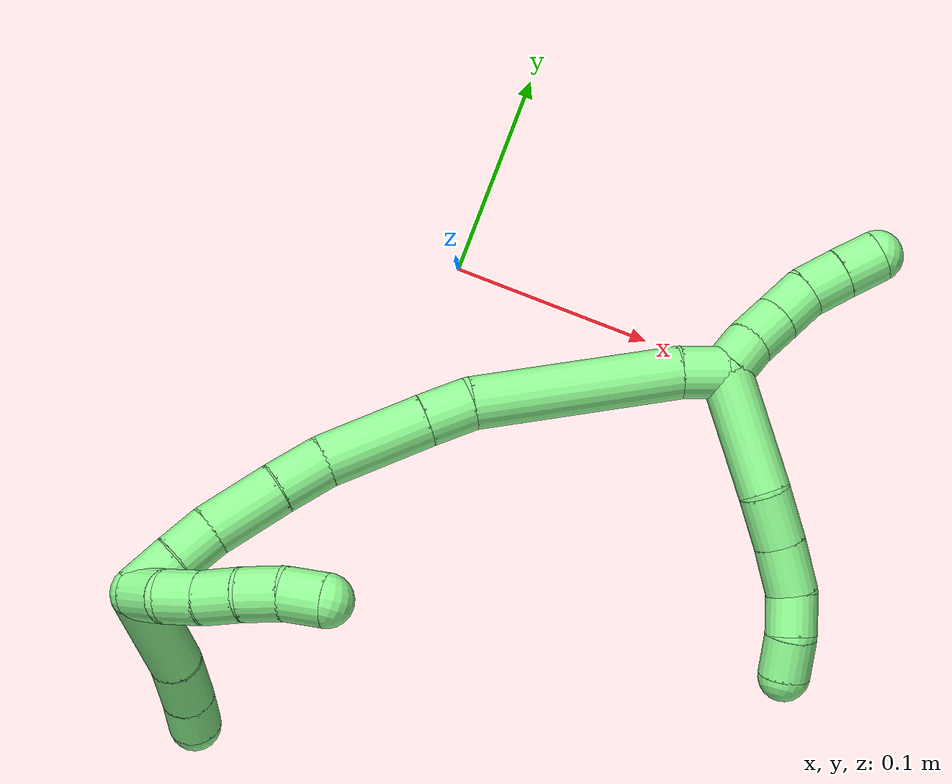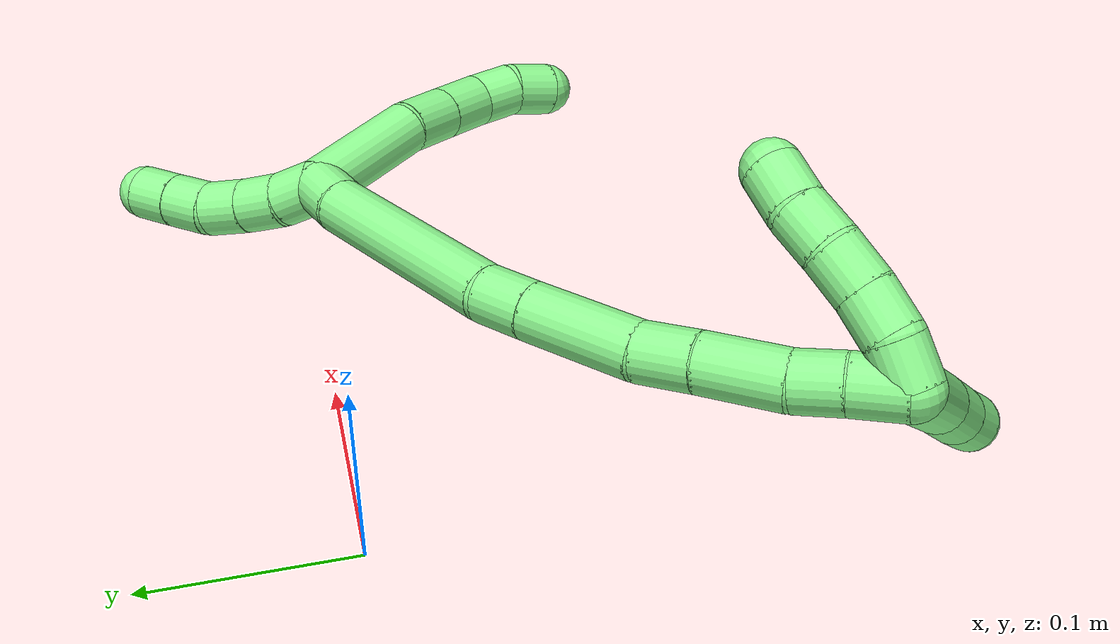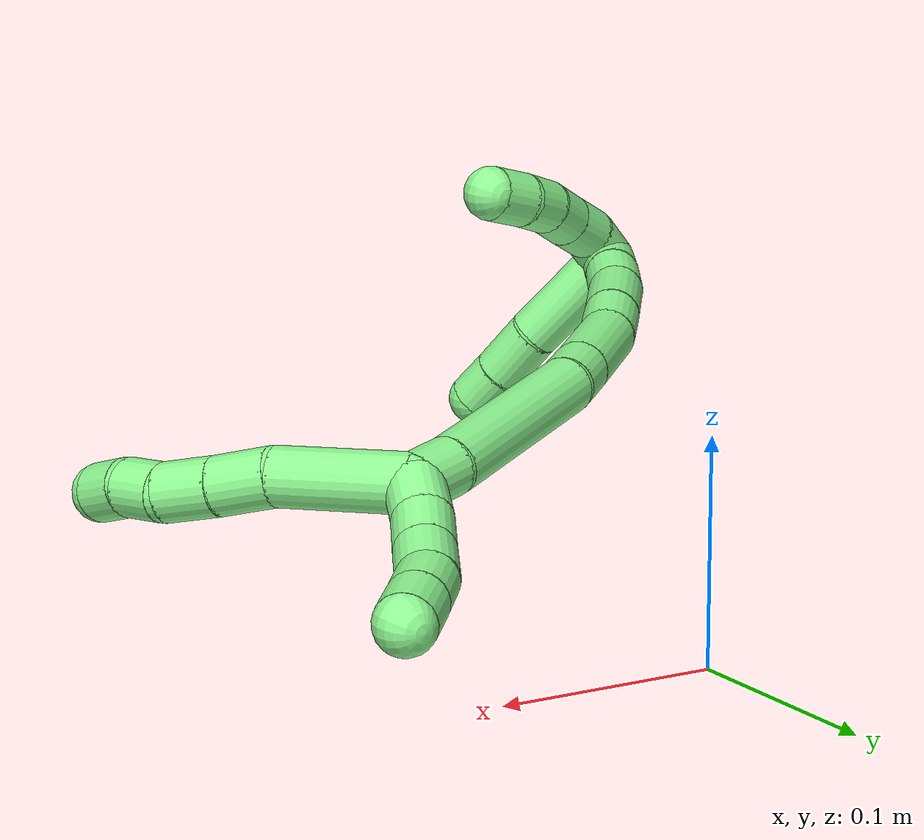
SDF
<sdf version="1.7">
 <world name="default">
  <model name="13">
   <static>0</static>
   <link name="13">
    <collision name="collision-cylinder-e_1_2_8">
     <pose>0.012705 0.010531 0.024418 -0.407168 0.445712 -0.093501</pose>
     <geometry><cylinder><radius>0.0125</radius><length>0.058943</length></cylinder></geometry>
     <surface>
      <friction><ode><mu>1.16</mu><mu2>1.16</mu2><slip1>0</slip1><slip2>0</slip2></ode></friction>
      <contact><ode><kp>1e+06</kp><kd>1</kd><max_vel>0</max_vel><min_depth>0.001</min_depth></ode></contact>
     </surface>
    </collision>
    <visual name="visual-cylinder-e_1_2_8">
     <pose>0.012705 0.010531 0.024418 -0.407168 0.445712 -0.093501</pose>
     <geometry><cylinder><radius>0.0125</radius><length>0.058943</length></cylinder></geometry>
     <material><ambient>0.564706 0.984314 0.572549 1</ambient></material>
    </visual>
    <collision name="collision-cylinder-e_2_8_9">
     <pose>0.03279 0.023792 0.059088 -0.260251 0.607766 -0.082031</pose>
     <geometry><cylinder><radius>0.0125</radius><length>0.025848</length></cylinder></geometry>
     <surface>
      <friction><ode><mu>1.16</mu><mu2>1.16</mu2><slip1>0</slip1><slip2>0</slip2></ode></friction>
      <contact><ode><kp>1e+06</kp><kd>1</kd><max_vel>0</max_vel><min_depth>0.001</min_depth></ode></contact>
     </surface>
    </collision>
    <visual name="visual-cylinder-e_2_8_9">
     <pose>0.03279 0.023792 0.059088 -0.260251 0.607766 -0.082031</pose>
     <geometry><cylinder><radius>0.0125</radius><length>0.025848</length></cylinder></geometry>
     <material><ambient>0.564706 0.984314 0.572549 1</ambient></material>
    </visual>
    <collision name="collision-cylinder-e_3_9_10">
     <pose>0.046697 0.029031 0.079672 -0.238265 0.550614 -0.0676</pose>
     <geometry><cylinder><radius>0.0125</radius><length>0.02495</length></cylinder></geometry>
     <surface>
      <friction><ode><mu>1.16</mu><mu2>1.16</mu2><slip1>0</slip1><slip2>0</slip2></ode></friction>
      <contact><ode><kp>1e+06</kp><kd>1</kd><max_vel>0</max_vel><min_depth>0.001</min_depth></ode></contact>
     </surface>
    </collision>
    <visual name="visual-cylinder-e_3_9_10">
     <pose>0.046697 0.029031 0.079672 -0.238265 0.550614 -0.0676</pose>
     <geometry><cylinder><radius>0.0125</radius><length>0.02495</length></cylinder></geometry>
     <material><ambient>0.564706 0.984314 0.572549 1</ambient></material>
    </visual>
    <collision name="collision-cylinder-e_4_10_11">
     <pose>0.05577 0.032674 0.099672 -0.11672 0.25573 -0.015023</pose>
     <geometry><cylinder><radius>0.0125</radius><length>0.020126</length></cylinder></geometry>
     <surface>
      <friction><ode><mu>1.16</mu><mu2>1.16</mu2><slip1>0</slip1><slip2>0</slip2></ode></friction>
      <contact><ode><kp>1e+06</kp><kd>1</kd><max_vel>0</max_vel><min_depth>0.001</min_depth></ode></contact>
     </surface>
    </collision>
    <visual name="visual-cylinder-e_4_10_11">
     <pose>0.05577 0.032674 0.099672 -0.11672 0.25573 -0.015023</pose>
     <geometry><cylinder><radius>0.0125</radius><length>0.020126</length></cylinder></geometry>
     <material><ambient>0.564706 0.984314 0.572549 1</ambient></material>
    </visual>
    <collision name="collision-cylinder-e_5_11_6">
     <pose>0.061804 0.032338 0.118669 0.15622 0.353877 0.027988</pose>
     <geometry><cylinder><radius>0.0125</radius><length>0.020134</length></cylinder></geometry>
     <surface>
      <friction><ode><mu>1.16</mu><mu2>1.16</mu2><slip1>0</slip1><slip2>0</slip2></ode></friction>
      <contact><ode><kp>1e+06</kp><kd>1</kd><max_vel>0</max_vel><min_depth>0.001</min_depth></ode></contact>
     </surface>
    </collision>
    <visual name="visual-cylinder-e_5_11_6">
     <pose>0.061804 0.032338 0.118669 0.15622 0.353877 0.027988</pose>
     <geometry><cylinder><radius>0.0125</radius><length>0.020134</length></cylinder></geometry>
     <material><ambient>0.564706 0.984314 0.572549 1</ambient></material>
    </visual>
    <collision name="collision-cylinder-e_1_2_12">
     <pose>0.005614 7.8e-05 -0.008275 -3.13219 0.596073 -3.11099</pose>
     <geometry><cylinder><radius>0.0125</radius><length>0.02</length></cylinder></geometry>
     <surface>
      <friction><ode><mu>1.16</mu><mu2>1.16</mu2><slip1>0</slip1><slip2>0</slip2></ode></friction>
      <contact><ode><kp>1e+06</kp><kd>1</kd><max_vel>0</max_vel><min_depth>0.001</min_depth></ode></contact>
     </surface>
    </collision>
    <visual name="visual-cylinder-e_1_2_12">
     <pose>0.005614 7.8e-05 -0.008275 -3.13219 0.596073 -3.11099</pose>
     <geometry><cylinder><radius>0.0125</radius><length>0.02</length></cylinder></geometry>
     <material><ambient>0.564706 0.984314 0.572549 1</ambient></material>
    </visual>
    <collision name="collision-cylinder-e_2_12_13">
     <pose>0.016853 0.002009 -0.024608 -2.91556 0.597395 -2.43528</pose>
     <geometry><cylinder><radius>0.0125</radius><length>0.02</length></cylinder></geometry>
     <surface>
      <friction><ode><mu>1.16</mu><mu2>1.16</mu2><slip1>0</slip1><slip2>0</slip2></ode></friction>
      <contact><ode><kp>1e+06</kp><kd>1</kd><max_vel>0</max_vel><min_depth>0.001</min_depth></ode></contact>
     </surface>
    </collision>
    <visual name="visual-cylinder-e_2_12_13">
     <pose>0.016853 0.002009 -0.024608 -2.91556 0.597395 -2.43528</pose>
     <geometry><cylinder><radius>0.0125</radius><length>0.02</length></cylinder></geometry>
     <material><ambient>0.564706 0.984314 0.572549 1</ambient></material>
    </visual>
    <collision name="collision-cylinder-e_3_13_14">
     <pose>0.027503 0.006355 -0.040944 -2.84902 0.526534 -2.14102</pose>
     <geometry><cylinder><radius>0.0125</radius><length>0.02</length></cylinder></geometry>
     <surface>
      <friction><ode><mu>1.16</mu><mu2>1.16</mu2><slip1>0</slip1><slip2>0</slip2></ode></friction>
      <contact><ode><kp>1e+06</kp><kd>1</kd><max_vel>0</max_vel><min_depth>0.001</min_depth></ode></contact>
     </surface>
    </collision>
    <visual name="visual-cylinder-e_3_13_14">
     <pose>0.027503 0.006355 -0.040944 -2.84902 0.526534 -2.14102</pose>
     <geometry><cylinder><radius>0.0125</radius><length>0.02</length></cylinder></geometry>
     <material><ambient>0.564706 0.984314 0.572549 1</ambient></material>
    </visual>
    <collision name="collision-cylinder-e_4_14_15">
     <pose>0.037788 0.013851 -0.0561 -2.51284 0.55386 -1.43669</pose>
     <geometry><cylinder><radius>0.0125</radius><length>0.02</length></cylinder></geometry>
     <surface>
      <friction><ode><mu>1.16</mu><mu2>1.16</mu2><slip1>0</slip1><slip2>0</slip2></ode></friction>
      <contact><ode><kp>1e+06</kp><kd>1</kd><max_vel>0</max_vel><min_depth>0.001</min_depth></ode></contact>
     </surface>
    </collision>
    <visual name="visual-cylinder-e_4_14_15">
     <pose>0.037788 0.013851 -0.0561 -2.51284 0.55386 -1.43669</pose>
     <geometry><cylinder><radius>0.0125</radius><length>0.02</length></cylinder></geometry>
     <material><ambient>0.564706 0.984314 0.572549 1</ambient></material>
    </visual>
    <collision name="collision-cylinder-e_5_15_5">
     <pose>0.048492 0.023908 -0.069673 -2.49472 0.575689 -1.44694</pose>
     <geometry><cylinder><radius>0.0125</radius><length>0.02</length></cylinder></geometry>
     <surface>
      <friction><ode><mu>1.16</mu><mu2>1.16</mu2><slip1>0</slip1><slip2>0</slip2></ode></friction>
      <contact><ode><kp>1e+06</kp><kd>1</kd><max_vel>0</max_vel><min_depth>0.001</min_depth></ode></contact>
     </surface>
    </collision>
    <visual name="visual-cylinder-e_5_15_5">
     <pose>0.048492 0.023908 -0.069673 -2.49472 0.575689 -1.44694</pose>
     <geometry><cylinder><radius>0.0125</radius><length>0.02</length></cylinder></geometry>
     <material><ambient>0.564706 0.984314 0.572549 1</ambient></material>
    </visual>
    <collision name="collision-cylinder-e_1_2_16">
     <pose>-0.007597 -0.0073 0.003038 1.17649 -0.765404 -0.52464</pose>
     <geometry><cylinder><radius>0.0125</radius><length>0.02193</length></cylinder></geometry>
     <surface>
      <friction><ode><mu>1.16</mu><mu2>1.16</mu2><slip1>0</slip1><slip2>0</slip2></ode></friction>
      <contact><ode><kp>1e+06</kp><kd>1</kd><max_vel>0</max_vel><min_depth>0.001</min_depth></ode></contact>
     </surface>
    </collision>
    <visual name="visual-cylinder-e_1_2_16">
     <pose>-0.007597 -0.0073 0.003038 1.17649 -0.765404 -0.52464</pose>
     <geometry><cylinder><radius>0.0125</radius><length>0.02193</length></cylinder></geometry>
     <material><ambient>0.564706 0.984314 0.572549 1</ambient></material>
    </visual>
    <collision name="collision-cylinder-e_2_16_17">
     <pose>-0.04827 -0.045569 0.026667 0.984006 -0.726923 -0.402207</pose>
     <geometry><cylinder><radius>0.0125</radius><length>0.09954</length></cylinder></geometry>
     <surface>
      <friction><ode><mu>1.16</mu><mu2>1.16</mu2><slip1>0</slip1><slip2>0</slip2></ode></friction>
      <contact><ode><kp>1e+06</kp><kd>1</kd><max_vel>0</max_vel><min_depth>0.001</min_depth></ode></contact>
     </surface>
    </collision>
    <visual name="visual-cylinder-e_2_16_17">
     <pose>-0.04827 -0.045569 0.026667 0.984006 -0.726923 -0.402207</pose>
     <geometry><cylinder><radius>0.0125</radius><length>0.09954</length></cylinder></geometry>
     <material><ambient>0.564706 0.984314 0.572549 1</ambient></material>
    </visual>
    <collision name="collision-cylinder-e_3_17_18">
     <pose>-0.087711 -0.083062 0.053973 0.771007 -0.597106 -0.24849</pose>
     <geometry><cylinder><radius>0.0125</radius><length>0.022643</length></cylinder></geometry>
     <surface>
      <friction><ode><mu>1.16</mu><mu2>1.16</mu2><slip1>0</slip1><slip2>0</slip2></ode></friction>
      <contact><ode><kp>1e+06</kp><kd>1</kd><max_vel>0</max_vel><min_depth>0.001</min_depth></ode></contact>
     </surface>
    </collision>
    <visual name="visual-cylinder-e_3_17_18">
     <pose>-0.087711 -0.083062 0.053973 0.771007 -0.597106 -0.24849</pose>
     <geometry><cylinder><radius>0.0125</radius><length>0.022643</length></cylinder></geometry>
     <material><ambient>0.564706 0.984314 0.572549 1</ambient></material>
    </visual>
    <collision name="collision-cylinder-e_4_18_19">
     <pose>-0.107914 -0.10403 0.07623 0.748787 -0.577869 -0.232543</pose>
     <geometry><cylinder><radius>0.0125</radius><length>0.050661</length></cylinder></geometry>
     <surface>
      <friction><ode><mu>1.16</mu><mu2>1.16</mu2><slip1>0</slip1><slip2>0</slip2></ode></friction>
      <contact><ode><kp>1e+06</kp><kd>1</kd><max_vel>0</max_vel><min_depth>0.001</min_depth></ode></contact>
     </surface>
    </collision>
    <visual name="visual-cylinder-e_4_18_19">
     <pose>-0.107914 -0.10403 0.07623 0.748787 -0.577869 -0.232543</pose>
     <geometry><cylinder><radius>0.0125</radius><length>0.050661</length></cylinder></geometry>
     <material><ambient>0.564706 0.984314 0.572549 1</ambient></material>
    </visual>
    <collision name="collision-cylinder-e_5_19_20">
     <pose>-0.128501 -0.123896 0.100732 0.544214 -0.572581 -0.163911</pose>
     <geometry><cylinder><radius>0.0125</radius><length>0.024919</length></cylinder></geometry>
     <surface>
      <friction><ode><mu>1.16</mu><mu2>1.16</mu2><slip1>0</slip1><slip2>0</slip2></ode></friction>
      <contact><ode><kp>1e+06</kp><kd>1</kd><max_vel>0</max_vel><min_depth>0.001</min_depth></ode></contact>
     </surface>
    </collision>
    <visual name="visual-cylinder-e_5_19_20">
     <pose>-0.128501 -0.123896 0.100732 0.544214 -0.572581 -0.163911</pose>
     <geometry><cylinder><radius>0.0125</radius><length>0.024919</length></cylinder></geometry>
     <material><ambient>0.564706 0.984314 0.572549 1</ambient></material>
    </visual>
    <collision name="collision-cylinder-e_6_20_21">
     <pose>-0.143962 -0.137752 0.123187 0.558543 -0.500789 -0.146426</pose>
     <geometry><cylinder><radius>0.0125</radius><length>0.036285</length></cylinder></geometry>
     <surface>
      <friction><ode><mu>1.16</mu><mu2>1.16</mu2><slip1>0</slip1><slip2>0</slip2></ode></friction>
      <contact><ode><kp>1e+06</kp><kd>1</kd><max_vel>0</max_vel><min_depth>0.001</min_depth></ode></contact>
     </surface>
    </collision>
    <visual name="visual-cylinder-e_6_20_21">
     <pose>-0.143962 -0.137752 0.123187 0.558543 -0.500789 -0.146426</pose>
     <geometry><cylinder><radius>0.0125</radius><length>0.036285</length></cylinder></geometry>
     <material><ambient>0.564706 0.984314 0.572549 1</ambient></material>
    </visual>
    <collision name="collision-cylinder-e_7_21_22">
     <pose>-0.157547 -0.14966 0.145231 0.386013 -0.486011 -0.096825</pose>
     <geometry><cylinder><radius>0.0125</radius><length>0.02087</length></cylinder></geometry>
     <surface>
      <friction><ode><mu>1.16</mu><mu2>1.16</mu2><slip1>0</slip1><slip2>0</slip2></ode></friction>
      <contact><ode><kp>1e+06</kp><kd>1</kd><max_vel>0</max_vel><min_depth>0.001</min_depth></ode></contact>
     </surface>
    </collision>
    <visual name="visual-cylinder-e_7_21_22">
     <pose>-0.157547 -0.14966 0.145231 0.386013 -0.486011 -0.096825</pose>
     <geometry><cylinder><radius>0.0125</radius><length>0.02087</length></cylinder></geometry>
     <material><ambient>0.564706 0.984314 0.572549 1</ambient></material>
    </visual>
    <collision name="collision-cylinder-e_8_22_1">
     <pose>-0.167079 -0.157463 0.163451 0.420832 -0.414158 -0.089681</pose>
     <geometry><cylinder><radius>0.0125</radius><length>0.023151</length></cylinder></geometry>
     <surface>
      <friction><ode><mu>1.16</mu><mu2>1.16</mu2><slip1>0</slip1><slip2>0</slip2></ode></friction>
      <contact><ode><kp>1e+06</kp><kd>1</kd><max_vel>0</max_vel><min_depth>0.001</min_depth></ode></contact>
     </surface>
    </collision>
    <visual name="visual-cylinder-e_8_22_1">
     <pose>-0.167079 -0.157463 0.163451 0.420832 -0.414158 -0.089681</pose>
     <geometry><cylinder><radius>0.0125</radius><length>0.023151</length></cylinder></geometry>
     <material><ambient>0.564706 0.984314 0.572549 1</ambient></material>
    </visual>
    <collision name="collision-cylinder-e_1_1_23">
     <pose>-0.172668 -0.151875 0.172232 -1.66048 -0.093174 0.101914</pose>
     <geometry><cylinder><radius>0.0125</radius><length>0.02</length></cylinder></geometry>
     <surface>
      <friction><ode><mu>1.16</mu><mu2>1.16</mu2><slip1>0</slip1><slip2>0</slip2></ode></friction>
      <contact><ode><kp>1e+06</kp><kd>1</kd><max_vel>0</max_vel><min_depth>0.001</min_depth></ode></contact>
     </surface>
    </collision>
    <visual name="visual-cylinder-e_1_1_23">
     <pose>-0.172668 -0.151875 0.172232 -1.66048 -0.093174 0.101914</pose>
     <geometry><cylinder><radius>0.0125</radius><length>0.02</length></cylinder></geometry>
     <material><ambient>0.564706 0.984314 0.572549 1</ambient></material>
    </visual>
    <collision name="collision-cylinder-e_2_23_24">
     <pose>-0.171529 -0.132341 0.169543 -1.75553 0.208445 -0.250598</pose>
     <geometry><cylinder><radius>0.0125</radius><length>0.02</length></cylinder></geometry>
     <surface>
      <friction><ode><mu>1.16</mu><mu2>1.16</mu2><slip1>0</slip1><slip2>0</slip2></ode></friction>
      <contact><ode><kp>1e+06</kp><kd>1</kd><max_vel>0</max_vel><min_depth>0.001</min_depth></ode></contact>
     </surface>
    </collision>
    <visual name="visual-cylinder-e_2_23_24">
     <pose>-0.171529 -0.132341 0.169543 -1.75553 0.208445 -0.250598</pose>
     <geometry><cylinder><radius>0.0125</radius><length>0.02</length></cylinder></geometry>
     <material><ambient>0.564706 0.984314 0.572549 1</ambient></material>
    </visual>
    <collision name="collision-cylinder-e_3_24_25">
     <pose>-0.167455 -0.113373 0.164825 -1.87352 0.201797 -0.273651</pose>
     <geometry><cylinder><radius>0.0125</radius><length>0.02</length></cylinder></geometry>
     <surface>
      <friction><ode><mu>1.16</mu><mu2>1.16</mu2><slip1>0</slip1><slip2>0</slip2></ode></friction>
      <contact><ode><kp>1e+06</kp><kd>1</kd><max_vel>0</max_vel><min_depth>0.001</min_depth></ode></contact>
     </surface>
    </collision>
    <visual name="visual-cylinder-e_3_24_25">
     <pose>-0.167455 -0.113373 0.164825 -1.87352 0.201797 -0.273651</pose>
     <geometry><cylinder><radius>0.0125</radius><length>0.02</length></cylinder></geometry>
     <material><ambient>0.564706 0.984314 0.572549 1</ambient></material>
    </visual>
    <collision name="collision-cylinder-e_4_25_26">
     <pose>-0.161879 -0.095063 0.159261 -1.85775 0.365198 -0.484343</pose>
     <geometry><cylinder><radius>0.0125</radius><length>0.02</length></cylinder></geometry>
     <surface>
      <friction><ode><mu>1.16</mu><mu2>1.16</mu2><slip1>0</slip1><slip2>0</slip2></ode></friction>
      <contact><ode><kp>1e+06</kp><kd>1</kd><max_vel>0</max_vel><min_depth>0.001</min_depth></ode></contact>
     </surface>
    </collision>
    <visual name="visual-cylinder-e_4_25_26">
     <pose>-0.161879 -0.095063 0.159261 -1.85775 0.365198 -0.484343</pose>
     <geometry><cylinder><radius>0.0125</radius><length>0.02</length></cylinder></geometry>
     <material><ambient>0.564706 0.984314 0.572549 1</ambient></material>
    </visual>
    <collision name="collision-cylinder-e_5_26_4">
     <pose>-0.154067 -0.077096 0.155682 -1.67419 0.438006 -0.484048</pose>
     <geometry><cylinder><radius>0.0125</radius><length>0.02</length></cylinder></geometry>
     <surface>
      <friction><ode><mu>1.16</mu><mu2>1.16</mu2><slip1>0</slip1><slip2>0</slip2></ode></friction>
      <contact><ode><kp>1e+06</kp><kd>1</kd><max_vel>0</max_vel><min_depth>0.001</min_depth></ode></contact>
     </surface>
    </collision>
    <visual name="visual-cylinder-e_5_26_4">
     <pose>-0.154067 -0.077096 0.155682 -1.67419 0.438006 -0.484048</pose>
     <geometry><cylinder><radius>0.0125</radius><length>0.02</length></cylinder></geometry>
     <material><ambient>0.564706 0.984314 0.572549 1</ambient></material>
    </visual>
    <collision name="collision-cylinder-e_1_1_27">
     <pose>-0.149102 -0.166021 0.185686 0.324774 1.04103 0.18728</pose>
     <geometry><cylinder><radius>0.0125</radius><length>0.052462</length></cylinder></geometry>
     <surface>
      <friction><ode><mu>1.16</mu><mu2>1.16</mu2><slip1>0</slip1><slip2>0</slip2></ode></friction>
      <contact><ode><kp>1e+06</kp><kd>1</kd><max_vel>0</max_vel><min_depth>0.001</min_depth></ode></contact>
     </surface>
    </collision>
    <visual name="visual-cylinder-e_1_1_27">
     <pose>-0.149102 -0.166021 0.185686 0.324774 1.04103 0.18728</pose>
     <geometry><cylinder><radius>0.0125</radius><length>0.052462</length></cylinder></geometry>
     <material><ambient>0.564706 0.984314 0.572549 1</ambient></material>
    </visual>
    <collision name="collision-cylinder-e_2_27_28">
     <pose>-0.115447 -0.173919 0.205458 0.470687 0.937594 0.241698</pose>
     <geometry><cylinder><radius>0.0125</radius><length>0.027339</length></cylinder></geometry>
     <surface>
      <friction><ode><mu>1.16</mu><mu2>1.16</mu2><slip1>0</slip1><slip2>0</slip2></ode></friction>
      <contact><ode><kp>1e+06</kp><kd>1</kd><max_vel>0</max_vel><min_depth>0.001</min_depth></ode></contact>
     </surface>
    </collision>
    <visual name="visual-cylinder-e_2_27_28">
     <pose>-0.115447 -0.173919 0.205458 0.470687 0.937594 0.241698</pose>
     <geometry><cylinder><radius>0.0125</radius><length>0.027339</length></cylinder></geometry>
     <material><ambient>0.564706 0.984314 0.572549 1</ambient></material>
    </visual>
    <collision name="collision-cylinder-e_3_28_3">
     <pose>-0.096644 -0.180364 0.218473 0.446015 0.879903 0.212694</pose>
     <geometry><cylinder><radius>0.0125</radius><length>0.020199</length></cylinder></geometry>
     <surface>
      <friction><ode><mu>1.16</mu><mu2>1.16</mu2><slip1>0</slip1><slip2>0</slip2></ode></friction>
      <contact><ode><kp>1e+06</kp><kd>1</kd><max_vel>0</max_vel><min_depth>0.001</min_depth></ode></contact>
     </surface>
    </collision>
    <visual name="visual-cylinder-e_3_28_3">
     <pose>-0.096644 -0.180364 0.218473 0.446015 0.879903 0.212694</pose>
     <geometry><cylinder><radius>0.0125</radius><length>0.020199</length></cylinder></geometry>
     <material><ambient>0.564706 0.984314 0.572549 1</ambient></material>
    </visual>
    <collision name="collision-sphere-3">
     <pose>-0.088861 -0.18314 0.224279 0 -0 0</pose>
     <geometry><sphere><radius>0.0125</radius></sphere></geometry>
     <surface>
      <friction><ode><mu>1.16</mu><mu2>1.16</mu2><slip1>0</slip1><slip2>0</slip2></ode></friction>
      <contact><ode><kp>1e+06</kp><kd>1</kd><max_vel>0</max_vel><min_depth>0.001</min_depth></ode></contact>
     </surface>
    </collision>
    <visual name="visual-sphere-3">
     <pose>-0.088861 -0.18314 0.224279 0 -0 0</pose>
     <geometry><sphere><radius>0.0125</radius></sphere></geometry>
     <material><ambient>0.564706 0.984314 0.572549 1</ambient></material>
    </visual>
    <collision name="collision-sphere-28">
     <pose>-0.104427 -0.177588 0.212667 0 -0 0</pose>
     <geometry><sphere><radius>0.0125</radius></sphere></geometry>
     <surface>
      <friction><ode><mu>1.16</mu><mu2>1.16</mu2><slip1>0</slip1><slip2>0</slip2></ode></friction>
      <contact><ode><kp>1e+06</kp><kd>1</kd><max_vel>0</max_vel><min_depth>0.001</min_depth></ode></contact>
     </surface>
    </collision>
    <visual name="visual-sphere-28">
     <pose>-0.104427 -0.177588 0.212667 0 -0 0</pose>
     <geometry><sphere><radius>0.0125</radius></sphere></geometry>
     <material><ambient>0.564706 0.984314 0.572549 1</ambient></material>
    </visual>
    <collision name="collision-sphere-27">
     <pose>-0.126466 -0.170251 0.198248 0 -0 0</pose>
     <geometry><sphere><radius>0.0125</radius></sphere></geometry>
     <surface>
      <friction><ode><mu>1.16</mu><mu2>1.16</mu2><slip1>0</slip1><slip2>0</slip2></ode></friction>
      <contact><ode><kp>1e+06</kp><kd>1</kd><max_vel>0</max_vel><min_depth>0.001</min_depth></ode></contact>
     </surface>
    </collision>
    <visual name="visual-sphere-27">
     <pose>-0.126466 -0.170251 0.198248 0 -0 0</pose>
     <geometry><sphere><radius>0.0125</radius></sphere></geometry>
     <material><ambient>0.564706 0.984314 0.572549 1</ambient></material>
    </visual>
    <collision name="collision-sphere-4">
     <pose>-0.149825 -0.068089 0.154748 0 -0 0</pose>
     <geometry><sphere><radius>0.0125</radius></sphere></geometry>
     <surface>
      <friction><ode><mu>1.16</mu><mu2>1.16</mu2><slip1>0</slip1><slip2>0</slip2></ode></friction>
      <contact><ode><kp>1e+06</kp><kd>1</kd><max_vel>0</max_vel><min_depth>0.001</min_depth></ode></contact>
     </surface>
    </collision>
    <visual name="visual-sphere-4">
     <pose>-0.149825 -0.068089 0.154748 0 -0 0</pose>
     <geometry><sphere><radius>0.0125</radius></sphere></geometry>
     <material><ambient>0.564706 0.984314 0.572549 1</ambient></material>
    </visual>
    <collision name="collision-sphere-26">
     <pose>-0.158308 -0.086104 0.156617 0 -0 0</pose>
     <geometry><sphere><radius>0.0125</radius></sphere></geometry>
     <surface>
      <friction><ode><mu>1.16</mu><mu2>1.16</mu2><slip1>0</slip1><slip2>0</slip2></ode></friction>
      <contact><ode><kp>1e+06</kp><kd>1</kd><max_vel>0</max_vel><min_depth>0.001</min_depth></ode></contact>
     </surface>
    </collision>
    <visual name="visual-sphere-26">
     <pose>-0.158308 -0.086104 0.156617 0 -0 0</pose>
     <geometry><sphere><radius>0.0125</radius></sphere></geometry>
     <material><ambient>0.564706 0.984314 0.572549 1</ambient></material>
    </visual>
    <collision name="collision-sphere-25">
     <pose>-0.165451 -0.104021 0.161904 0 -0 0</pose>
     <geometry><sphere><radius>0.0125</radius></sphere></geometry>
     <surface>
      <friction><ode><mu>1.16</mu><mu2>1.16</mu2><slip1>0</slip1><slip2>0</slip2></ode></friction>
      <contact><ode><kp>1e+06</kp><kd>1</kd><max_vel>0</max_vel><min_depth>0.001</min_depth></ode></contact>
     </surface>
    </collision>
    <visual name="visual-sphere-25">
     <pose>-0.165451 -0.104021 0.161904 0 -0 0</pose>
     <geometry><sphere><radius>0.0125</radius></sphere></geometry>
     <material><ambient>0.564706 0.984314 0.572549 1</ambient></material>
    </visual>
    <collision name="collision-sphere-24">
     <pose>-0.169459 -0.122724 0.167746 0 -0 0</pose>
     <geometry><sphere><radius>0.0125</radius></sphere></geometry>
     <surface>
      <friction><ode><mu>1.16</mu><mu2>1.16</mu2><slip1>0</slip1><slip2>0</slip2></ode></friction>
      <contact><ode><kp>1e+06</kp><kd>1</kd><max_vel>0</max_vel><min_depth>0.001</min_depth></ode></contact>
     </surface>
    </collision>
    <visual name="visual-sphere-24">
     <pose>-0.169459 -0.122724 0.167746 0 -0 0</pose>
     <geometry><sphere><radius>0.0125</radius></sphere></geometry>
     <material><ambient>0.564706 0.984314 0.572549 1</ambient></material>
    </visual>
    <collision name="collision-sphere-23">
     <pose>-0.173598 -0.141958 0.17134 0 -0 0</pose>
     <geometry><sphere><radius>0.0125</radius></sphere></geometry>
     <surface>
      <friction><ode><mu>1.16</mu><mu2>1.16</mu2><slip1>0</slip1><slip2>0</slip2></ode></friction>
      <contact><ode><kp>1e+06</kp><kd>1</kd><max_vel>0</max_vel><min_depth>0.001</min_depth></ode></contact>
     </surface>
    </collision>
    <visual name="visual-sphere-23">
     <pose>-0.173598 -0.141958 0.17134 0 -0 0</pose>
     <geometry><sphere><radius>0.0125</radius></sphere></geometry>
     <material><ambient>0.564706 0.984314 0.572549 1</ambient></material>
    </visual>
    <collision name="collision-sphere-1">
     <pose>-0.171737 -0.161792 0.173123 0 -0 0</pose>
     <geometry><sphere><radius>0.0125</radius></sphere></geometry>
     <surface>
      <friction><ode><mu>1.16</mu><mu2>1.16</mu2><slip1>0</slip1><slip2>0</slip2></ode></friction>
      <contact><ode><kp>1e+06</kp><kd>1</kd><max_vel>0</max_vel><min_depth>0.001</min_depth></ode></contact>
     </surface>
    </collision>
    <visual name="visual-sphere-1">
     <pose>-0.171737 -0.161792 0.173123 0 -0 0</pose>
     <geometry><sphere><radius>0.0125</radius></sphere></geometry>
     <material><ambient>0.564706 0.984314 0.572549 1</ambient></material>
    </visual>
    <collision name="collision-sphere-22">
     <pose>-0.162421 -0.153133 0.153779 0 -0 0</pose>
     <geometry><sphere><radius>0.0125</radius></sphere></geometry>
     <surface>
      <friction><ode><mu>1.16</mu><mu2>1.16</mu2><slip1>0</slip1><slip2>0</slip2></ode></friction>
      <contact><ode><kp>1e+06</kp><kd>1</kd><max_vel>0</max_vel><min_depth>0.001</min_depth></ode></contact>
     </surface>
    </collision>
    <visual name="visual-sphere-22">
     <pose>-0.162421 -0.153133 0.153779 0 -0 0</pose>
     <geometry><sphere><radius>0.0125</radius></sphere></geometry>
     <material><ambient>0.564706 0.984314 0.572549 1</ambient></material>
    </visual>
    <collision name="collision-sphere-21">
     <pose>-0.152672 -0.146186 0.136683 0 -0 0</pose>
     <geometry><sphere><radius>0.0125</radius></sphere></geometry>
     <surface>
      <friction><ode><mu>1.16</mu><mu2>1.16</mu2><slip1>0</slip1><slip2>0</slip2></ode></friction>
      <contact><ode><kp>1e+06</kp><kd>1</kd><max_vel>0</max_vel><min_depth>0.001</min_depth></ode></contact>
     </surface>
    </collision>
    <visual name="visual-sphere-21">
     <pose>-0.152672 -0.146186 0.136683 0 -0 0</pose>
     <geometry><sphere><radius>0.0125</radius></sphere></geometry>
     <material><ambient>0.564706 0.984314 0.572549 1</ambient></material>
    </visual>
    <collision name="collision-sphere-6">
     <pose>0.065292 0.030869 0.127998 0 -0 0</pose>
     <geometry><sphere><radius>0.0125</radius></sphere></geometry>
     <surface>
      <friction><ode><mu>1.16</mu><mu2>1.16</mu2><slip1>0</slip1><slip2>0</slip2></ode></friction>
      <contact><ode><kp>1e+06</kp><kd>1</kd><max_vel>0</max_vel><min_depth>0.001</min_depth></ode></contact>
     </surface>
    </collision>
    <visual name="visual-sphere-6">
     <pose>0.065292 0.030869 0.127998 0 -0 0</pose>
     <geometry><sphere><radius>0.0125</radius></sphere></geometry>
     <material><ambient>0.564706 0.984314 0.572549 1</ambient></material>
    </visual>
    <collision name="collision-sphere-11">
     <pose>0.058315 0.033807 0.109341 0 -0 0</pose>
     <geometry><sphere><radius>0.0125</radius></sphere></geometry>
     <surface>
      <friction><ode><mu>1.16</mu><mu2>1.16</mu2><slip1>0</slip1><slip2>0</slip2></ode></friction>
      <contact><ode><kp>1e+06</kp><kd>1</kd><max_vel>0</max_vel><min_depth>0.001</min_depth></ode></contact>
     </surface>
    </collision>
    <visual name="visual-sphere-11">
     <pose>0.058315 0.033807 0.109341 0 -0 0</pose>
     <geometry><sphere><radius>0.0125</radius></sphere></geometry>
     <material><ambient>0.564706 0.984314 0.572549 1</ambient></material>
    </visual>
    <collision name="collision-sphere-10">
     <pose>0.053224 0.03154 0.090002 0 -0 0</pose>
     <geometry><sphere><radius>0.0125</radius></sphere></geometry>
     <surface>
      <friction><ode><mu>1.16</mu><mu2>1.16</mu2><slip1>0</slip1><slip2>0</slip2></ode></friction>
      <contact><ode><kp>1e+06</kp><kd>1</kd><max_vel>0</max_vel><min_depth>0.001</min_depth></ode></contact>
     </surface>
    </collision>
    <visual name="visual-sphere-10">
     <pose>0.053224 0.03154 0.090002 0 -0 0</pose>
     <geometry><sphere><radius>0.0125</radius></sphere></geometry>
     <material><ambient>0.564706 0.984314 0.572549 1</ambient></material>
    </visual>
    <collision name="collision-sphere-9">
     <pose>0.04017 0.026522 0.069341 0 -0 0</pose>
     <geometry><sphere><radius>0.0125</radius></sphere></geometry>
     <surface>
      <friction><ode><mu>1.16</mu><mu2>1.16</mu2><slip1>0</slip1><slip2>0</slip2></ode></friction>
      <contact><ode><kp>1e+06</kp><kd>1</kd><max_vel>0</max_vel><min_depth>0.001</min_depth></ode></contact>
     </surface>
    </collision>
    <visual name="visual-sphere-9">
     <pose>0.04017 0.026522 0.069341 0 -0 0</pose>
     <geometry><sphere><radius>0.0125</radius></sphere></geometry>
     <material><ambient>0.564706 0.984314 0.572549 1</ambient></material>
    </visual>
    <collision name="collision-sphere-2">
     <geometry><sphere><radius>0.0125</radius></sphere></geometry>
     <surface>
      <friction><ode><mu>1.16</mu><mu2>1.16</mu2><slip1>0</slip1><slip2>0</slip2></ode></friction>
      <contact><ode><kp>1e+06</kp><kd>1</kd><max_vel>0</max_vel><min_depth>0.001</min_depth></ode></contact>
     </surface>
    </collision>
    <visual name="visual-sphere-2">
     <geometry><sphere><radius>0.0125</radius></sphere></geometry>
     <material><ambient>0.564706 0.984314 0.572549 1</ambient></material>
    </visual>
    <collision name="collision-sphere-19">
     <pose>-0.12175 -0.118474 0.091773 0 -0 0</pose>
     <geometry><sphere><radius>0.0125</radius></sphere></geometry>
     <surface>
      <friction><ode><mu>1.16</mu><mu2>1.16</mu2><slip1>0</slip1><slip2>0</slip2></ode></friction>
      <contact><ode><kp>1e+06</kp><kd>1</kd><max_vel>0</max_vel><min_depth>0.001</min_depth></ode></contact>
     </surface>
    </collision>
    <visual name="visual-sphere-19">
     <pose>-0.12175 -0.118474 0.091773 0 -0 0</pose>
     <geometry><sphere><radius>0.0125</radius></sphere></geometry>
     <material><ambient>0.564706 0.984314 0.572549 1</ambient></material>
    </visual>
    <collision name="collision-sphere-8">
     <pose>0.02541 0.021061 0.048836 0 -0 0</pose>
     <geometry><sphere><radius>0.0125</radius></sphere></geometry>
     <surface>
      <friction><ode><mu>1.16</mu><mu2>1.16</mu2><slip1>0</slip1><slip2>0</slip2></ode></friction>
      <contact><ode><kp>1e+06</kp><kd>1</kd><max_vel>0</max_vel><min_depth>0.001</min_depth></ode></contact>
     </surface>
    </collision>
    <visual name="visual-sphere-8">
     <pose>0.02541 0.021061 0.048836 0 -0 0</pose>
     <geometry><sphere><radius>0.0125</radius></sphere></geometry>
     <material><ambient>0.564706 0.984314 0.572549 1</ambient></material>
    </visual>
    <collision name="collision-sphere-12">
     <pose>0.011228 0.000156 -0.01655 0 -0 0</pose>
     <geometry><sphere><radius>0.0125</radius></sphere></geometry>
     <surface>
      <friction><ode><mu>1.16</mu><mu2>1.16</mu2><slip1>0</slip1><slip2>0</slip2></ode></friction>
      <contact><ode><kp>1e+06</kp><kd>1</kd><max_vel>0</max_vel><min_depth>0.001</min_depth></ode></contact>
     </surface>
    </collision>
    <visual name="visual-sphere-12">
     <pose>0.011228 0.000156 -0.01655 0 -0 0</pose>
     <geometry><sphere><radius>0.0125</radius></sphere></geometry>
     <material><ambient>0.564706 0.984314 0.572549 1</ambient></material>
    </visual>
    <collision name="collision-sphere-13">
     <pose>0.022478 0.003862 -0.032666 0 -0 0</pose>
     <geometry><sphere><radius>0.0125</radius></sphere></geometry>
     <surface>
      <friction><ode><mu>1.16</mu><mu2>1.16</mu2><slip1>0</slip1><slip2>0</slip2></ode></friction>
      <contact><ode><kp>1e+06</kp><kd>1</kd><max_vel>0</max_vel><min_depth>0.001</min_depth></ode></contact>
     </surface>
    </collision>
    <visual name="visual-sphere-13">
     <pose>0.022478 0.003862 -0.032666 0 -0 0</pose>
     <geometry><sphere><radius>0.0125</radius></sphere></geometry>
     <material><ambient>0.564706 0.984314 0.572549 1</ambient></material>
    </visual>
    <collision name="collision-sphere-14">
     <pose>0.032529 0.008849 -0.049222 0 -0 0</pose>
     <geometry><sphere><radius>0.0125</radius></sphere></geometry>
     <surface>
      <friction><ode><mu>1.16</mu><mu2>1.16</mu2><slip1>0</slip1><slip2>0</slip2></ode></friction>
      <contact><ode><kp>1e+06</kp><kd>1</kd><max_vel>0</max_vel><min_depth>0.001</min_depth></ode></contact>
     </surface>
    </collision>
    <visual name="visual-sphere-14">
     <pose>0.032529 0.008849 -0.049222 0 -0 0</pose>
     <geometry><sphere><radius>0.0125</radius></sphere></geometry>
     <material><ambient>0.564706 0.984314 0.572549 1</ambient></material>
    </visual>
    <collision name="collision-sphere-15">
     <pose>0.043048 0.018853 -0.062979 0 -0 0</pose>
     <geometry><sphere><radius>0.0125</radius></sphere></geometry>
     <surface>
      <friction><ode><mu>1.16</mu><mu2>1.16</mu2><slip1>0</slip1><slip2>0</slip2></ode></friction>
      <contact><ode><kp>1e+06</kp><kd>1</kd><max_vel>0</max_vel><min_depth>0.001</min_depth></ode></contact>
     </surface>
    </collision>
    <visual name="visual-sphere-15">
     <pose>0.043048 0.018853 -0.062979 0 -0 0</pose>
     <geometry><sphere><radius>0.0125</radius></sphere></geometry>
     <material><ambient>0.564706 0.984314 0.572549 1</ambient></material>
    </visual>
    <collision name="collision-sphere-5">
     <pose>0.053936 0.028964 -0.076366 0 -0 0</pose>
     <geometry><sphere><radius>0.0125</radius></sphere></geometry>
     <surface>
      <friction><ode><mu>1.16</mu><mu2>1.16</mu2><slip1>0</slip1><slip2>0</slip2></ode></friction>
      <contact><ode><kp>1e+06</kp><kd>1</kd><max_vel>0</max_vel><min_depth>0.001</min_depth></ode></contact>
     </surface>
    </collision>
    <visual name="visual-sphere-5">
     <pose>0.053936 0.028964 -0.076366 0 -0 0</pose>
     <geometry><sphere><radius>0.0125</radius></sphere></geometry>
     <material><ambient>0.564706 0.984314 0.572549 1</ambient></material>
    </visual>
    <collision name="collision-sphere-16">
     <pose>-0.015194 -0.0146 0.006075 0 -0 0</pose>
     <geometry><sphere><radius>0.0125</radius></sphere></geometry>
     <surface>
      <friction><ode><mu>1.16</mu><mu2>1.16</mu2><slip1>0</slip1><slip2>0</slip2></ode></friction>
      <contact><ode><kp>1e+06</kp><kd>1</kd><max_vel>0</max_vel><min_depth>0.001</min_depth></ode></contact>
     </surface>
    </collision>
    <visual name="visual-sphere-16">
     <pose>-0.015194 -0.0146 0.006075 0 -0 0</pose>
     <geometry><sphere><radius>0.0125</radius></sphere></geometry>
     <material><ambient>0.564706 0.984314 0.572549 1</ambient></material>
    </visual>
    <collision name="collision-sphere-17">
     <pose>-0.081346 -0.076537 0.047258 0 -0 0</pose>
     <geometry><sphere><radius>0.0125</radius></sphere></geometry>
     <surface>
      <friction><ode><mu>1.16</mu><mu2>1.16</mu2><slip1>0</slip1><slip2>0</slip2></ode></friction>
      <contact><ode><kp>1e+06</kp><kd>1</kd><max_vel>0</max_vel><min_depth>0.001</min_depth></ode></contact>
     </surface>
    </collision>
    <visual name="visual-sphere-17">
     <pose>-0.081346 -0.076537 0.047258 0 -0 0</pose>
     <geometry><sphere><radius>0.0125</radius></sphere></geometry>
     <material><ambient>0.564706 0.984314 0.572549 1</ambient></material>
    </visual>
    <collision name="collision-sphere-18">
     <pose>-0.094077 -0.089586 0.060688 0 -0 0</pose>
     <geometry><sphere><radius>0.0125</radius></sphere></geometry>
     <surface>
      <friction><ode><mu>1.16</mu><mu2>1.16</mu2><slip1>0</slip1><slip2>0</slip2></ode></friction>
      <contact><ode><kp>1e+06</kp><kd>1</kd><max_vel>0</max_vel><min_depth>0.001</min_depth></ode></contact>
     </surface>
    </collision>
    <visual name="visual-sphere-18">
     <pose>-0.094077 -0.089586 0.060688 0 -0 0</pose>
     <geometry><sphere><radius>0.0125</radius></sphere></geometry>
     <material><ambient>0.564706 0.984314 0.572549 1</ambient></material>
    </visual>
    <collision name="collision-sphere-20">
     <pose>-0.135251 -0.129318 0.109691 0 -0 0</pose>
     <geometry><sphere><radius>0.0125</radius></sphere></geometry>
     <surface>
      <friction><ode><mu>1.16</mu><mu2>1.16</mu2><slip1>0</slip1><slip2>0</slip2></ode></friction>
      <contact><ode><kp>1e+06</kp><kd>1</kd><max_vel>0</max_vel><min_depth>0.001</min_depth></ode></contact>
     </surface>
    </collision>
    <visual name="visual-sphere-20">
     <pose>-0.135251 -0.129318 0.109691 0 -0 0</pose>
     <geometry><sphere><radius>0.0125</radius></sphere></geometry>
     <material><ambient>0.564706 0.984314 0.572549 1</ambient></material>
    </visual>
    <inertial>
     <pose>-0.066181 -0.068016 0.084213 0 -0 0</pose>
     <mass>0.75</mass>
     <inertia><ixx>8.8e-05</ixx><ixy>0</ixy><ixz>0</ixz><iyy>9.4e-05</iyy><iyz>0</iyz><izz>0.000114</izz></inertia>
    </inertial>
   </link>
   <pose>0.1377 -0.005044 0.095809 1.44252 0.873441 0.001022</pose>
  </model>
 </world>
</sdf>
